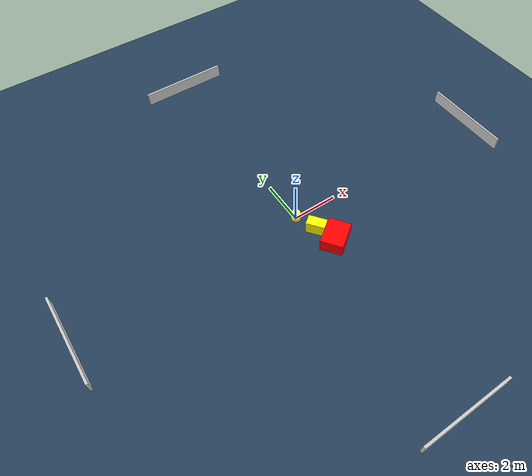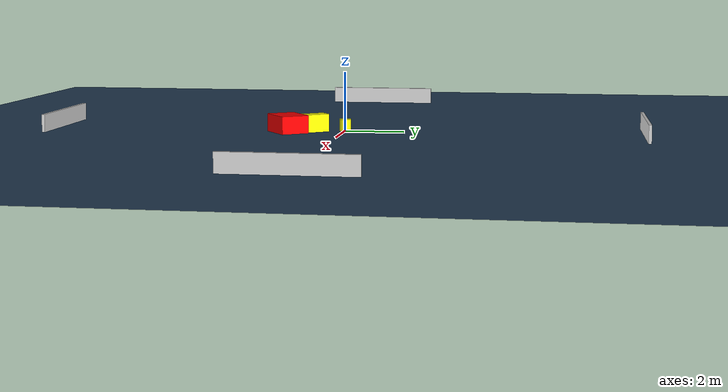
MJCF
<?xml version="1.0" ?>
<mujoco model="generated_environment">
  <option timestep="0.01" integrator="RK4" cone="elliptic"/>
  <default>
    <geom density="1"/>
  </default>
  <asset>
    <texture builtin="gradient" height="3072" name="skybox" rgb1="0.3 0.5 0.7" rgb2="0 0 0" type="skybox" width="512"/>
    <texture builtin="checker" height="300" name="groundplane" rgb1="0.2 0.3 0.4" rgb2="0.1 0.2 0.3" type="2d" width="300"/>
    <material name="groundplane" reflectance="0.2" texrepeat="5 5" texture="groundplane"/>
  </asset>
  <worldbody>
    <light dir="0 0 -1" directional="true" pos="0 0 1.5"/>
    <geom condim="3" friction="0.5 0.005 0.001" material="groundplane" name="floor" pos="0 0 0" size="0 0 0.05" type="plane"/>
    <body name="walls">
      <geom name="wall_1" condim="4" pos="-10.0 0.0 0.3" rgba="0.800000011920929 0.800000011920929 0.800000011920929 1.0" size="0.05 2.0 0.3" type="box"/>
      <geom name="wall_2" condim="4" pos="10.0 0.0 0.3" rgba="0.800000011920929 0.800000011920929 0.800000011920929 1.0" size="0.05 2.0 0.3" type="box"/>
      <geom name="wall_3" condim="4" pos="0.0 -10.0 0.3" rgba="0.800000011920929 0.800000011920929 0.800000011920929 1.0" size="2.0 0.05 0.3" type="box"/>
      <geom name="wall_4" condim="4" pos="0.0 10.0 0.3" rgba="0.800000011920929 0.800000011920929 0.800000011920929 1.0" size="2.0 0.05 0.3" type="box"/>
    </body>
    <body name="robot">
      <joint name="joint_x" type="slide" pos="0 0 0" axis="1 0 0"/>
      <joint name="joint_y" type="slide" pos="0 0 0" axis="0 1 0"/>
      <geom name="robot" type="cylinder" pos="0.0 0.0 0.2" size="0.2 0.2 0.0" mass="5.0" friction="1.0 0.005 0.0001" condim="4" rgba="1.0 1.0 0.0 1.0"/>
    </body>
    <body name="obstacle_1_movable">
      <geom name="obstacle_1_movable" condim="4" pos="0.3647378591246886 -0.9719901065674256 0.3" euler="0 0 217.35282780037394" friction="0.0 0.005 0.001" rgba="1.0 1.0 0.0 1.0" size="0.22944579772672674 0.4055333308091318 0.3" type="box" mass="0.1"/>
      <joint type="free"/>
    </body>
    <body name="obstacle_2_static">
      <geom name="obstacle_2_static" condim="4" pos="0.6902188663328601 -1.85076297522936 0.3" euler="0 0 305.7714360840803" friction="0.0 0.005 0.001" rgba="1.0 0.0 0.0 1.0" size="0.48503414439906095 0.6186762132809902 0.3" type="box"/>
    </body>
  </worldbody>
  <actuator>
    <motor name="actuator_x" joint="joint_x" gear="1" ctrlrange="-1 1"/>
    <motor name="actuator_y" joint="joint_y" gear="1" ctrlrange="-1 1"/>
  </actuator>
</mujoco>
